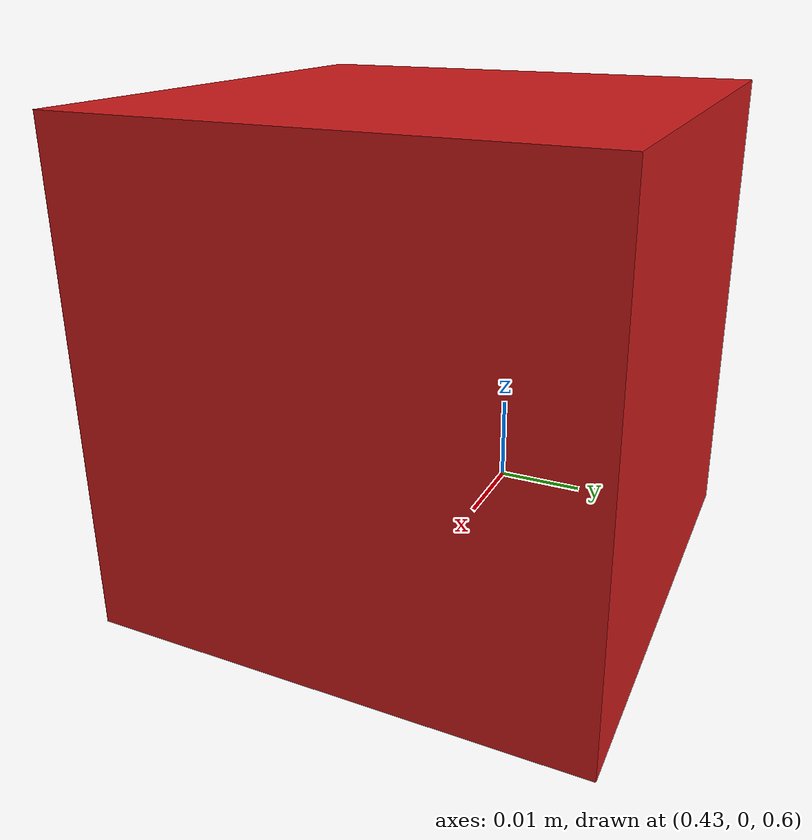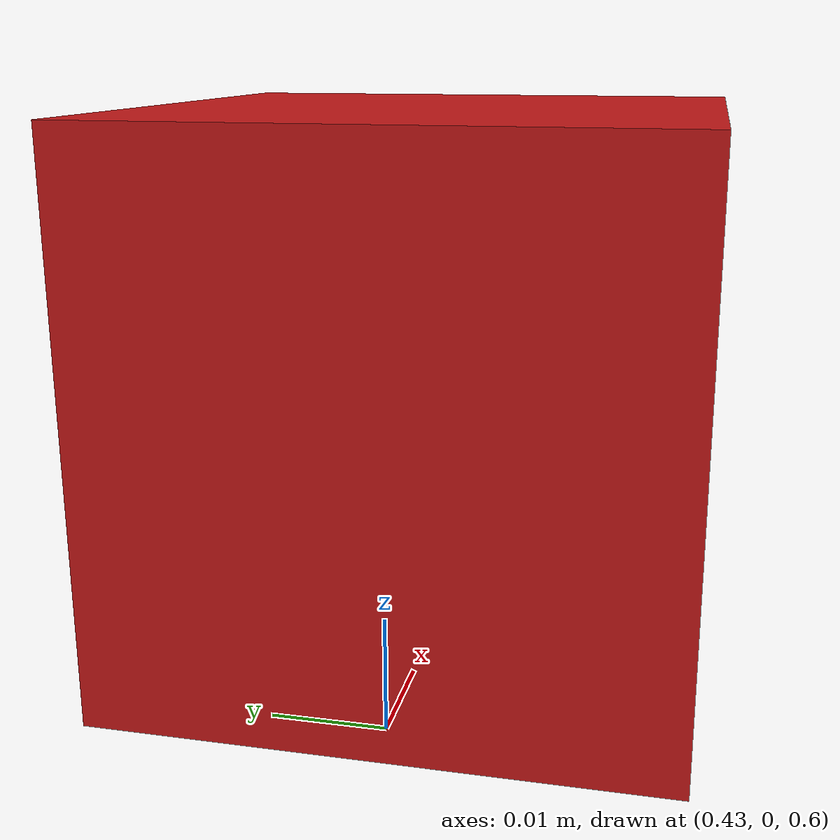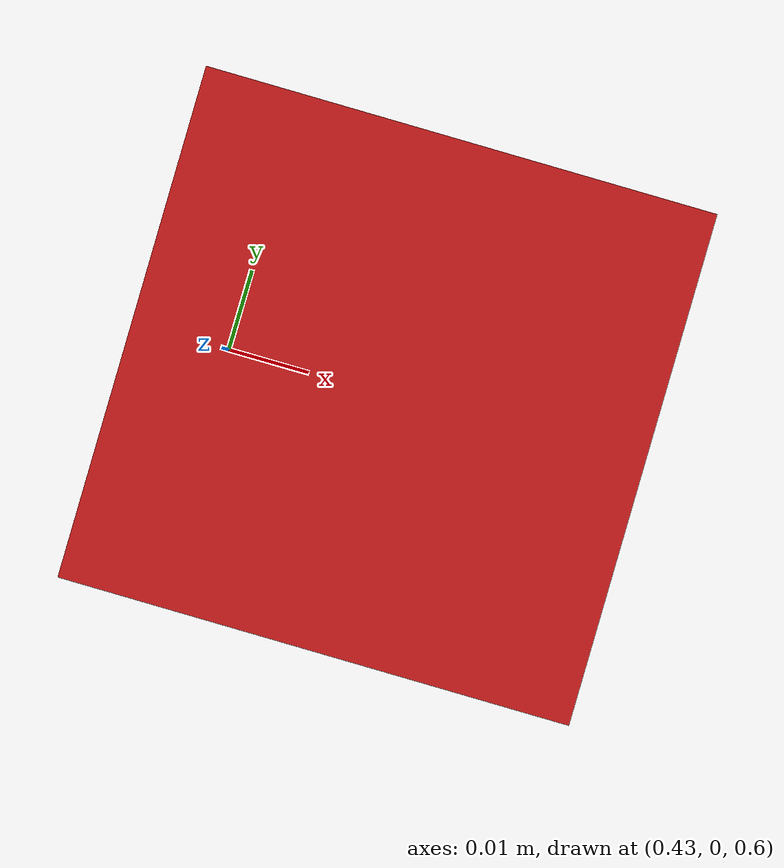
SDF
<?xml version="1.0" ?>
<sdf version="1.9">
  <model name="pick_object">
    <pose>0.45 0.0 0.625 0 0 0</pose>
    <link name="box_link">
      <inertial>
        <mass>0.1</mass>
        <inertia><ixx>4.17e-5</ixx><iyy>4.17e-5</iyy><izz>4.17e-5</izz></inertia>
      </inertial>
      <collision name="collision">
        <geometry><box><size>0.05 0.05 0.05</size></box></geometry>
        <surface>
          <friction><ode><mu>0.6</mu><mu2>0.6</mu2></ode></friction>
        </surface>
      </collision>
      <visual name="visual">
        <geometry><box><size>0.05 0.05 0.05</size></box></geometry>
        <material>
          <ambient>0.8 0.1 0.1 1</ambient>
          <diffuse>0.8 0.1 0.1 1</diffuse>
        </material>
      </visual>
    </link>
  </model>
</sdf>
